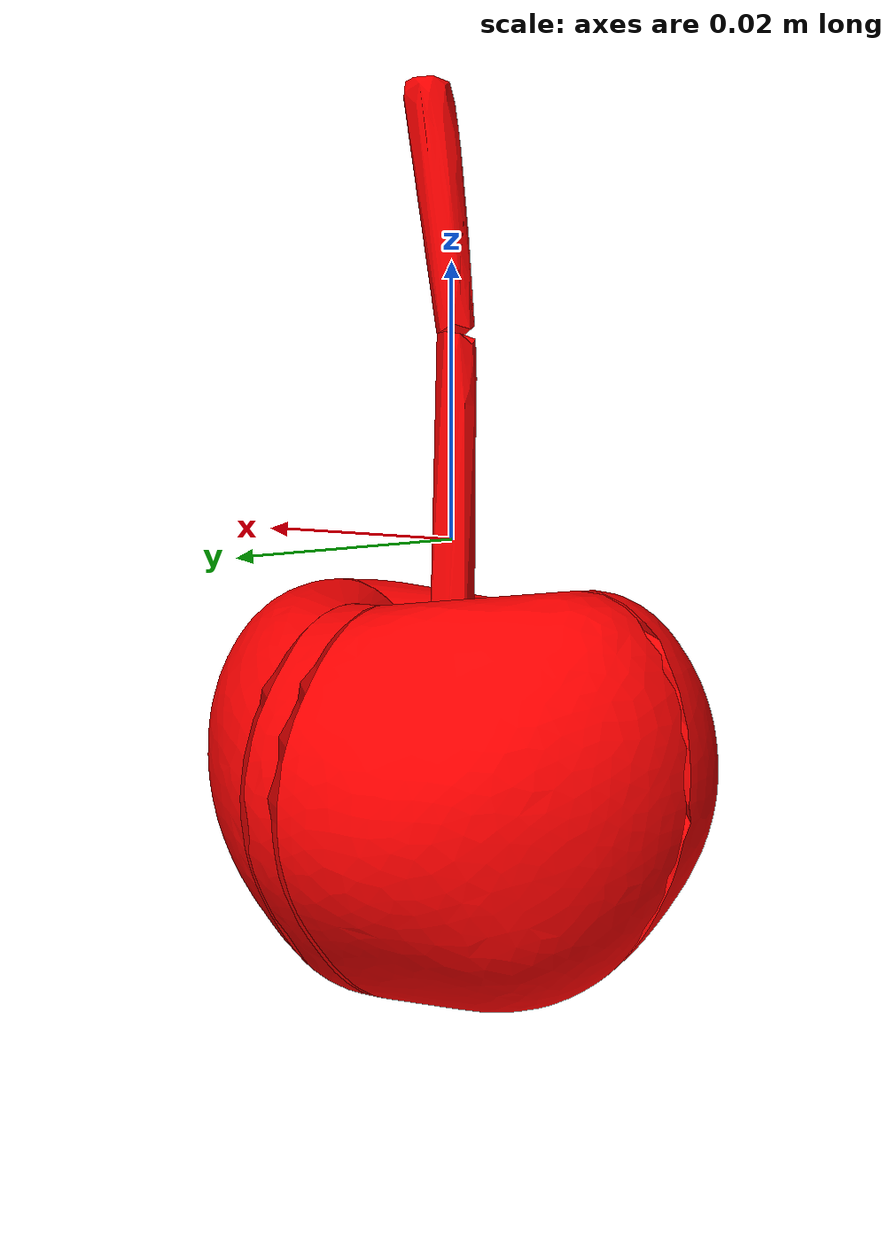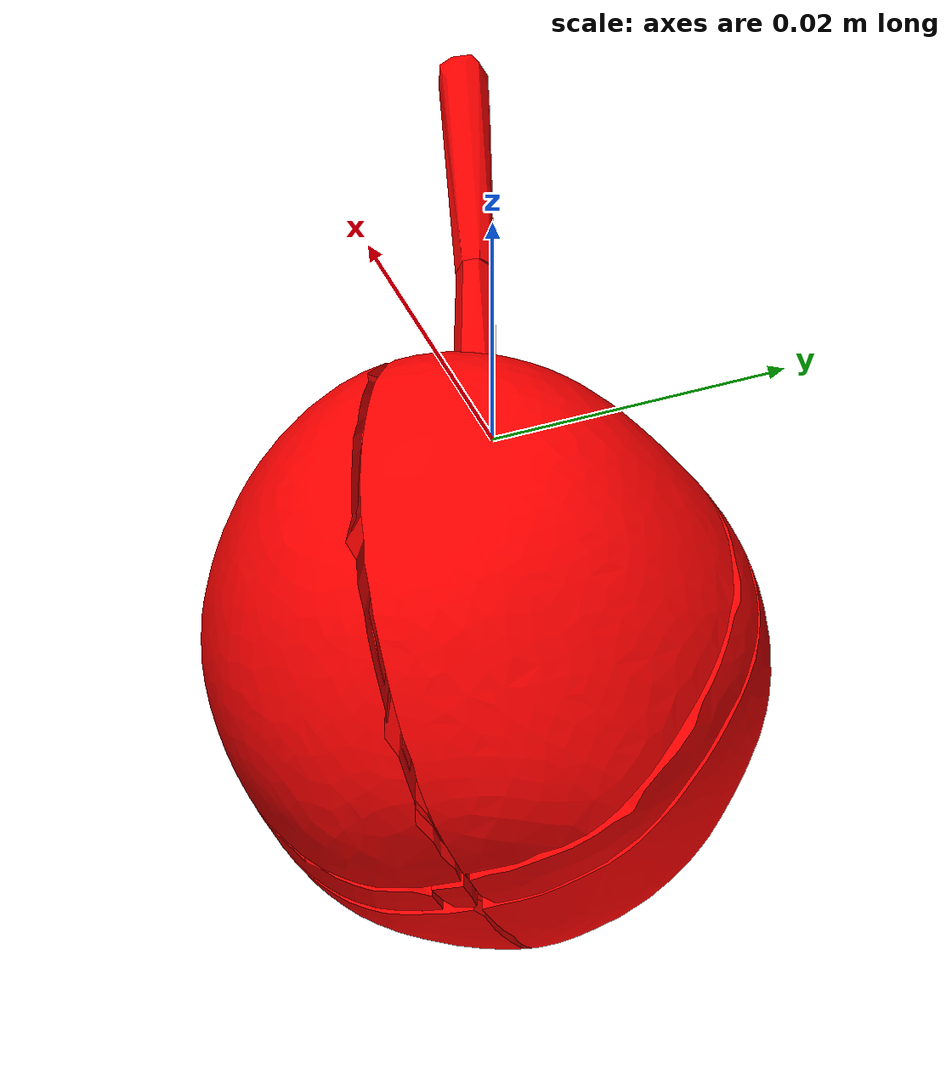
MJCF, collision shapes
<?xml version="1.0" ?>
<mujoco model="cherry">
	<compiler meshdir="cherry/meshes" texturedir="cherry/textures" angle="radian" autolimits="true" balanceinertia="true" boundmass="0.000001" boundinertia="0.000001"/>
	<default>
		<default class="visual">
			<geom contype="0" conaffinity="0"/>
		</default>
		<default class="collision">
			<geom rgba="1.0 0.0 0.0 0.0"/>
		</default>
	</default>
	<asset>
		<mesh name="CherryPeel" file="obj/CherryPeel.obj" scale="1.0 1.0 1.0"/>
		<mesh name="CherryPeel_001" file="stl/CherryPeel_001.stl" scale="1.0 1.0 1.0"/>
		<mesh name="CherryPeel_002" file="stl/CherryPeel_002.stl" scale="1.0 1.0 1.0"/>
		<mesh name="CherryPeel_003" file="stl/CherryPeel_003.stl" scale="1.0 1.0 1.0"/>
		<mesh name="CherryPeel_004" file="stl/CherryPeel_004.stl" scale="1.0 1.0 1.0"/>
		<mesh name="CherryPeel_005" file="stl/CherryPeel_005.stl" scale="1.0 1.0 1.0"/>
		<mesh name="CherryPeel_006" file="stl/CherryPeel_006.stl" scale="1.0 1.0 1.0"/>
		<mesh name="CherryPeel_007" file="stl/CherryPeel_007.stl" scale="1.0 1.0 1.0"/>
		<mesh name="CherryStalk" file="obj/CherryStalk.obj" scale="1.0 1.0 1.0"/>
		<mesh name="CherryStalk_001" file="stl/CherryStalk_001.stl" scale="1.0 1.0 1.0"/>
		<mesh name="CherryStalk_002" file="stl/CherryStalk_002.stl" scale="1.0 1.0 1.0"/>
		<mesh name="CherryFlesh" file="obj/CherryFlesh.obj" scale="1.0 1.0 1.0"/>
		<mesh name="CherryFlesh_001" file="stl/CherryFlesh_001.stl" scale="1.0 1.0 1.0"/>
		<mesh name="CherryFlesh_002" file="stl/CherryFlesh_002.stl" scale="1.0 1.0 1.0"/>
		<mesh name="CherryFlesh_003" file="stl/CherryFlesh_003.stl" scale="1.0 1.0 1.0"/>
		<mesh name="CherryFlesh_004" file="stl/CherryFlesh_004.stl" scale="1.0 1.0 1.0"/>
		<mesh name="CherryFlesh_005" file="stl/CherryFlesh_005.stl" scale="1.0 1.0 1.0"/>
		<mesh name="CherryFlesh_006" file="stl/CherryFlesh_006.stl" scale="1.0 1.0 1.0"/>
		<mesh name="CherryFlesh_007" file="stl/CherryFlesh_007.stl" scale="1.0 1.0 1.0"/>
		<mesh name="CherryFlesh_008" file="stl/CherryFlesh_008.stl" scale="1.0 1.0 1.0"/>
		<mesh name="CherrySeed" file="obj/CherrySeed.obj" scale="1.0 1.0 1.0"/>
		<mesh name="CherrySeed_001" file="stl/CherrySeed_001.stl" scale="1.0 1.0 1.0"/>
		<material name="M_CherryPeel" texture="T_CherryPeel"/>
		<material name="M_CherryStalk" texture="T_CherryStalk"/>
		<material name="M_CherryFlesh" texture="T_CherryFlesh"/>
		<material name="M_CherrySeed" texture="T_CherrySeed"/>
		<texture name="T_CherryPeel" type="2d" file="T_CherryPeel.png"/>
		<texture name="T_CherryStalk" type="2d" file="T_CherryStalk.png"/>
		<texture name="T_CherryFlesh" type="2d" file="T_CherryFlesh.png"/>
		<texture name="T_CherrySeed" type="2d" file="T_CherrySeed.png"/>
	</asset>
	<worldbody>
		<body name="cherry" pos="0.0 0.0 0.0" quat="1.0 0.0 0.0 0.0">
			<body name="cherry_peel" pos="0.0 0.0 0.0" quat="1.0 0.0 0.0 0.0">
				<inertial mass="0.0016458273166790605" pos="-0.0001495521719334647 -0.00023928728478495032 -0.017217982560396194" quat="0.5100764036178589 0.4872205853462219 0.5025638341903687 -0.4998677968978882" diaginertia="3.394449947791145e-07 7.705484676989727e-07 8.148197707669169e-07"/>
				<geom name="CherryPeel" type="mesh" pos="0.0 0.0 0.0" quat="1.0 0.0 0.0 0.0" mesh="CherryPeel" material="M_CherryPeel" class="visual"/>
				<geom name="CherryPeel_001" type="mesh" pos="0.0 0.0 0.0" quat="1.0 0.0 0.0 0.0" mesh="CherryPeel_001" class="collision"/>
				<geom name="CherryPeel_002" type="mesh" pos="0.0 0.0 0.0" quat="1.0 0.0 0.0 0.0" mesh="CherryPeel_002" class="collision"/>
				<geom name="CherryPeel_003" type="mesh" pos="0.0 0.0 0.0" quat="1.0 0.0 0.0 0.0" mesh="CherryPeel_003" class="collision"/>
				<geom name="CherryPeel_004" type="mesh" pos="0.0 0.0 0.0" quat="1.0 0.0 0.0 0.0" mesh="CherryPeel_004" class="collision"/>
				<geom name="CherryPeel_005" type="mesh" pos="0.0 0.0 0.0" quat="1.0 0.0 0.0 0.0" mesh="CherryPeel_005" class="collision"/>
				<geom name="CherryPeel_006" type="mesh" pos="0.0 0.0 0.0" quat="1.0 0.0 0.0 0.0" mesh="CherryPeel_006" class="collision"/>
				<geom name="CherryPeel_007" type="mesh" pos="0.0 0.0 0.0" quat="1.0 0.0 0.0 0.0" mesh="CherryPeel_007" class="collision"/>
			</body>
			<body name="cherry_flesh" pos="0.0 0.0 0.0" quat="1.0 0.0 0.0 0.0">
				<inertial mass="0.017631854861974716" pos="8.694358257343993e-05 -0.00020917726214975119 -0.01762148179113865" quat="0.51277095079422 0.4913542568683624 0.5002497434616089 -0.4953656494617462" diaginertia="2.114738663294702e-06 7.124238436517771e-06 7.458932486770209e-06"/>
				<geom name="CherryFlesh" type="mesh" pos="0.0 0.0 0.0" quat="1.0 0.0 0.0 0.0" mesh="CherryFlesh" material="M_CherryFlesh" class="visual"/>
				<geom name="CherryFlesh_001" type="mesh" pos="0.0 0.0 0.0" quat="1.0 0.0 0.0 0.0" mesh="CherryFlesh_001" class="collision"/>
				<geom name="CherryFlesh_002" type="mesh" pos="0.0 0.0 0.0" quat="1.0 0.0 0.0 0.0" mesh="CherryFlesh_002" class="collision"/>
				<geom name="CherryFlesh_003" type="mesh" pos="0.0 0.0 0.0" quat="1.0 0.0 0.0 0.0" mesh="CherryFlesh_003" class="collision"/>
				<geom name="CherryFlesh_004" type="mesh" pos="0.0 0.0 0.0" quat="1.0 0.0 0.0 0.0" mesh="CherryFlesh_004" class="collision"/>
				<geom name="CherryFlesh_005" type="mesh" pos="0.0 0.0 0.0" quat="1.0 0.0 0.0 0.0" mesh="CherryFlesh_005" class="collision"/>
				<geom name="CherryFlesh_006" type="mesh" pos="0.0 0.0 0.0" quat="1.0 0.0 0.0 0.0" mesh="CherryFlesh_006" class="collision"/>
				<geom name="CherryFlesh_007" type="mesh" pos="0.0 0.0 0.0" quat="1.0 0.0 0.0 0.0" mesh="CherryFlesh_007" class="collision"/>
				<geom name="CherryFlesh_008" type="mesh" pos="0.0 0.0 0.0" quat="1.0 0.0 0.0 0.0" mesh="CherryFlesh_008" class="collision"/>
			</body>
			<body name="cherry_stalk" pos="0.0 0.0 0.0" quat="1.0 0.0 0.0 0.0">
				<inertial mass="0.00019579460786189884" pos="0.0012943166075274348 -0.0011308129178360105 0.014164258725941181" quat="0.6543992161750793 -0.18187999725341797 0.6978278756141663 0.22741501033306122" diaginertia="3.386261271387525e-10 7.392029743868989e-08 7.400990398309659e-08"/>
				<geom name="CherryStalk" type="mesh" pos="0.0 0.0 0.0" quat="1.0 0.0 0.0 0.0" mesh="CherryStalk" material="M_CherryStalk" class="visual"/>
				<geom name="CherryStalk_001" type="mesh" pos="0.0 0.0 0.0" quat="1.0 0.0 0.0 0.0" mesh="CherryStalk_001" class="collision"/>
				<geom name="CherryStalk_002" type="mesh" pos="0.0 0.0 0.0" quat="1.0 0.0 0.0 0.0" mesh="CherryStalk_002" class="collision"/>
			</body>
			<body name="cherry_seed" pos="0.0 0.0 0.0" quat="1.0 0.0 0.0 0.0">
				<inertial mass="0.0011327199172228575" pos="8.019603410502896e-05 -0.0004382617480587214 -0.018748460337519646" quat="0.6526948809623718 0.2687729001045227 -0.6485552787780762 0.28482717275619507" diaginertia="1.5963077970582162e-08 4.187753575024544e-07 4.2156753465860675e-07"/>
				<geom name="CherrySeed" type="mesh" pos="0.0 0.0 0.0" quat="1.0 0.0 0.0 0.0" mesh="CherrySeed" material="M_CherrySeed" class="visual"/>
				<geom name="CherrySeed_001" type="mesh" pos="0.0 0.0 0.0" quat="1.0 0.0 0.0 0.0" mesh="CherrySeed_001" class="collision"/>
			</body>
		</body>
	</worldbody>
	<equality/>
</mujoco>
